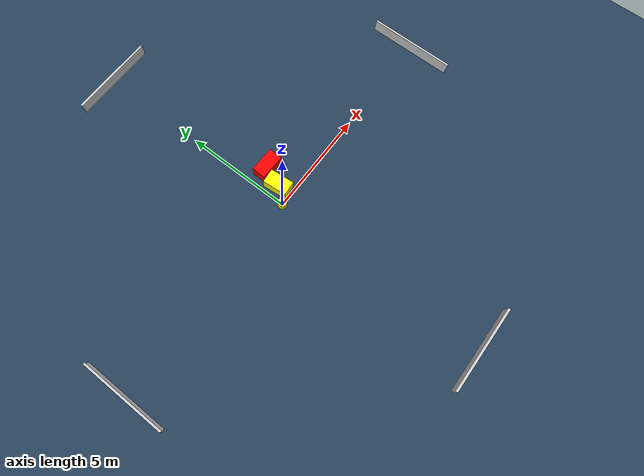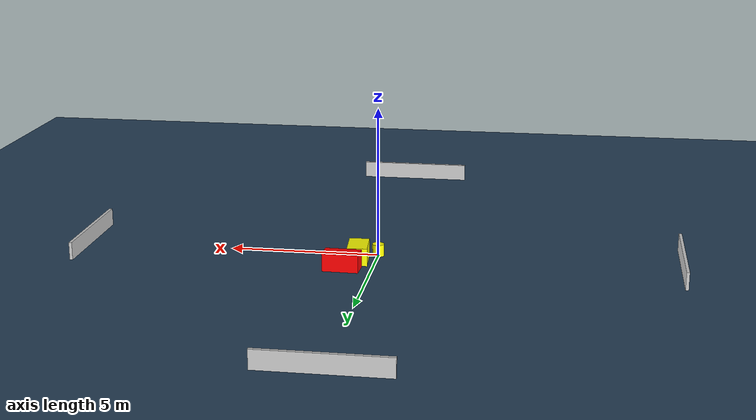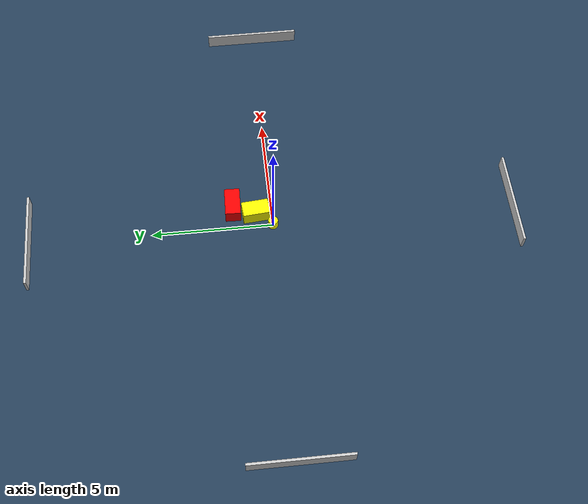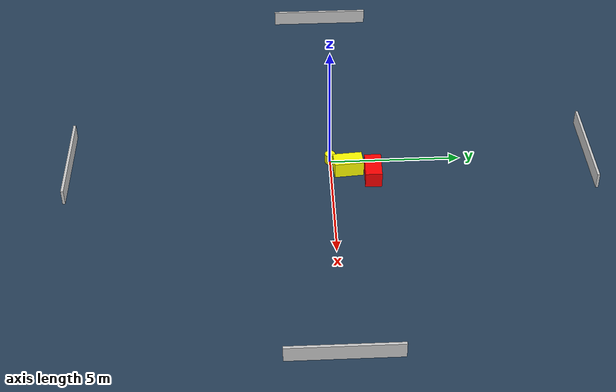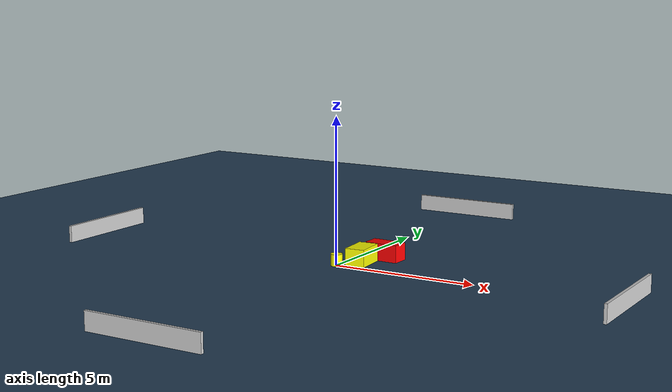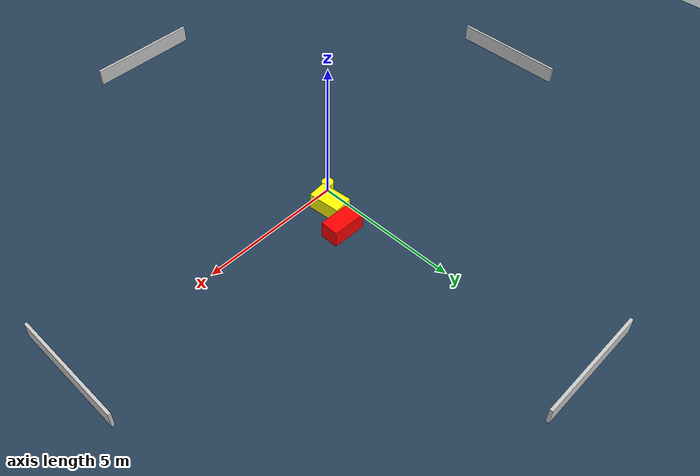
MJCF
<?xml version="1.0" ?>
<mujoco model="generated_environment">
  <option timestep="0.01" integrator="RK4" cone="elliptic"/>
  <default>
    <geom density="1"/>
  </default>
  <asset>
    <texture builtin="gradient" height="3072" name="skybox" rgb1="0.3 0.5 0.7" rgb2="0 0 0" type="skybox" width="512"/>
    <texture builtin="checker" height="300" name="groundplane" rgb1="0.2 0.3 0.4" rgb2="0.1 0.2 0.3" type="2d" width="300"/>
    <material name="groundplane" reflectance="0.2" texrepeat="5 5" texture="groundplane"/>
  </asset>
  <worldbody>
    <light dir="0 0 -1" directional="true" pos="0 0 1.5"/>
    <geom condim="3" friction="0.5 0.005 0.001" material="groundplane" name="floor" pos="0 0 0" size="0 0 0.05" type="plane"/>
    <body name="walls">
      <geom name="wall_1" condim="4" pos="-10.0 0.0 0.3" rgba="0.800000011920929 0.800000011920929 0.800000011920929 1.0" size="0.05 2.0 0.3" type="box"/>
      <geom name="wall_2" condim="4" pos="10.0 0.0 0.3" rgba="0.800000011920929 0.800000011920929 0.800000011920929 1.0" size="0.05 2.0 0.3" type="box"/>
      <geom name="wall_3" condim="4" pos="0.0 -10.0 0.3" rgba="0.800000011920929 0.800000011920929 0.800000011920929 1.0" size="2.0 0.05 0.3" type="box"/>
      <geom name="wall_4" condim="4" pos="0.0 10.0 0.3" rgba="0.800000011920929 0.800000011920929 0.800000011920929 1.0" size="2.0 0.05 0.3" type="box"/>
    </body>
    <body name="robot">
      <joint name="joint_x" type="slide" pos="0 0 0" axis="1 0 0"/>
      <joint name="joint_y" type="slide" pos="0 0 0" axis="0 1 0"/>
      <geom name="robot" type="cylinder" pos="0.0 0.0 0.2" size="0.2 0.2 0.0" mass="5.0" friction="1.0 0.005 0.0001" condim="4" rgba="1.0 1.0 0.0 1.0"/>
    </body>
    <body name="obstacle_1_movable">
      <geom name="obstacle_1_movable" condim="4" pos="0.5711847216047164 0.6679827290222701 0.3" euler="0 0 274.88782869455304" friction="0.0 0.005 0.001" rgba="1.0 1.0 0.0 1.0" size="0.5571691231737977 0.3327851641400478 0.3" type="box" mass="0.1"/>
      <joint type="free"/>
    </body>
    <body name="obstacle_2_static">
      <geom name="obstacle_2_static" condim="4" pos="0.9635548410275472 1.595908294809657 0.3" euler="0 0 268.4472971068601" friction="0.0 0.005 0.001" rgba="1.0 0.0 0.0 1.0" size="0.3179988352456314 0.5966869017469129 0.3" type="box"/>
    </body>
  </worldbody>
  <actuator>
    <motor name="actuator_x" joint="joint_x" gear="1" ctrlrange="-1 1"/>
    <motor name="actuator_y" joint="joint_y" gear="1" ctrlrange="-1 1"/>
  </actuator>
</mujoco>
